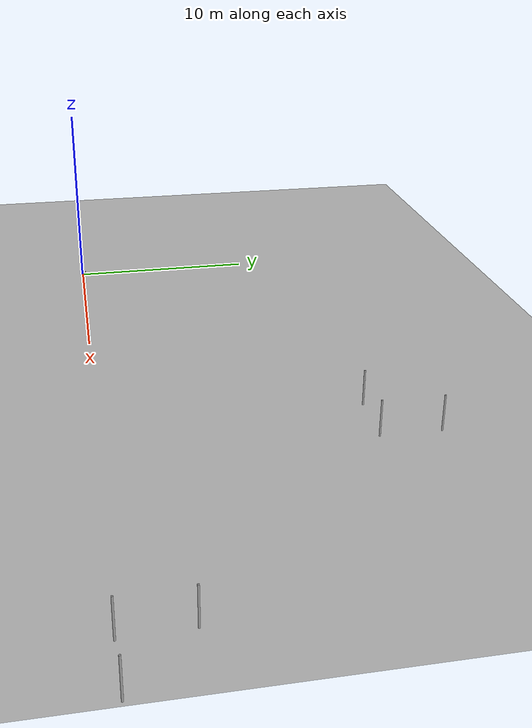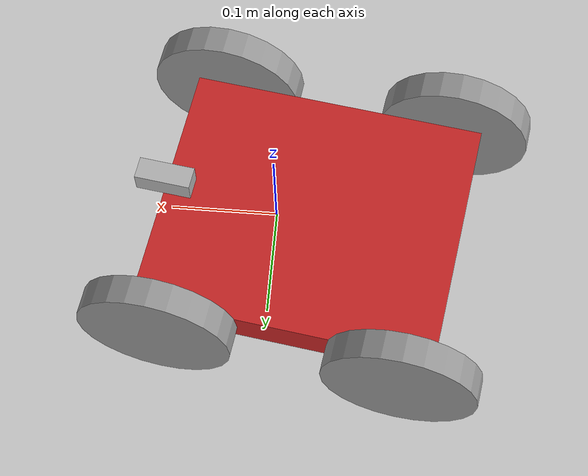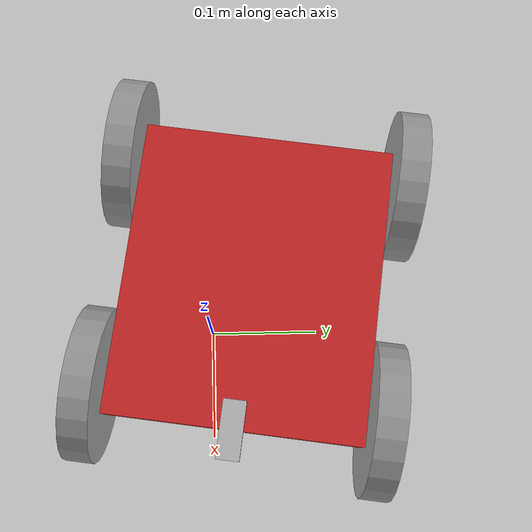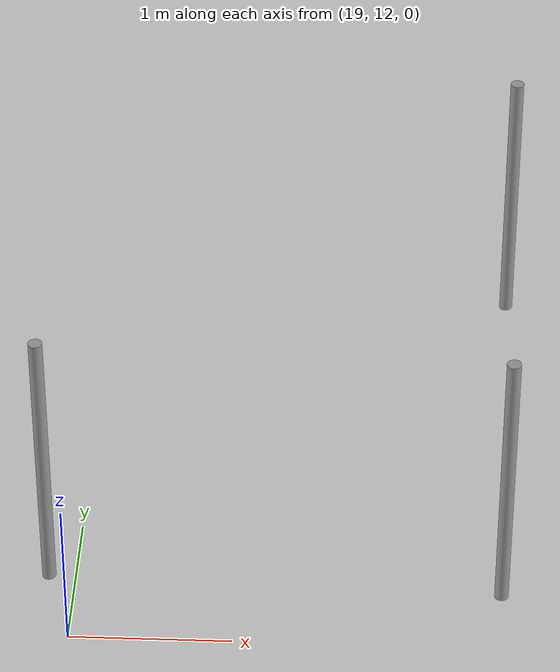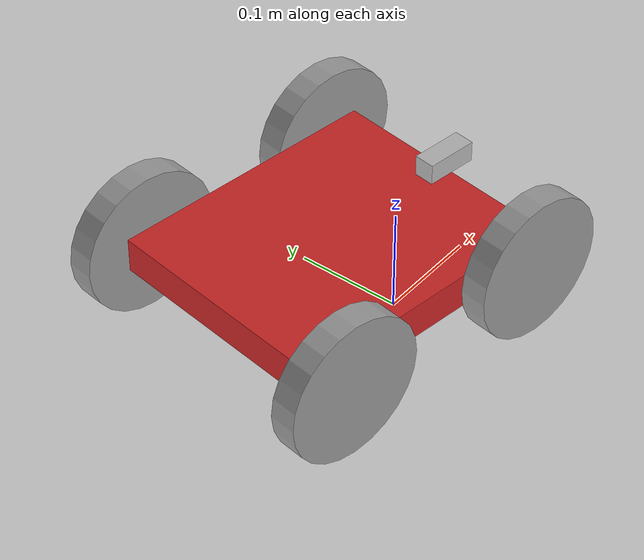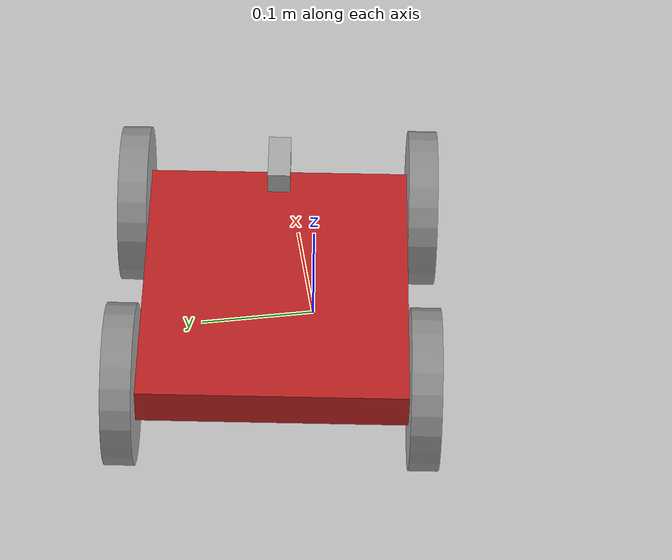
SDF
<sdf version="1.6">
 <world name="default">
  <light name="sun" type="directional">
   <pose>0 0 10 0 -0 0</pose>
   <diffuse>0.8 0.8 0.8 1</diffuse>
   <specular>0.2 0.2 0.2 1</specular>
   <attenuation>
    <range>1000</range>
    <constant>0.9</constant>
    <linear>0.01</linear>
    <quadratic>0.001</quadratic>
   </attenuation>
   <direction>-0.5 0.1 -0.9</direction>
  </light>
  <model name="smile_map">
   <static>1</static>
   <link name="link">
    <collision name="collision">
     <geometry><plane><size>70 50</size><normal>0 0 1</normal></plane></geometry>
     <surface><friction><ode><mu>100</mu><mu2>50</mu2></ode></friction></surface>
    </collision>
    <visual name="visual">
     <geometry><plane><size>70 50</size><normal>0 0 1</normal></plane></geometry>
     <material>
      <script><uri>file://media/materials/scripts/smile.material</uri><name>Smile/Map</name></script>
     </material>
    </visual>
   </link>
  </model>
  <gravity>0 0 -9.8</gravity>
  <magnetic_field>6e-06 2.3e-05 -4.2e-05</magnetic_field>
  <atmosphere type="adiabatic"/>
  <physics name="default_physics" default="0" type="ode">
   <max_step_size>0.001</max_step_size>
   <real_time_factor>1</real_time_factor>
   <real_time_update_rate>1000</real_time_update_rate>
  </physics>
  <scene><ambient>0.4 0.4 0.4 1</ambient><background>0.7 0.7 0.7 1</background><shadows>1</shadows></scene>
  <audio><device>default</device></audio>
  <spherical_coordinates>
   <surface_model>EARTH_WGS84</surface_model>
   <latitude_deg>0</latitude_deg>
   <longitude_deg>0</longitude_deg>
   <elevation>0</elevation>
   <heading_deg>0</heading_deg>
  </spherical_coordinates>
  <model name="/smile">
   <link name="base_link">
    <inertial>
     <mass>1</mass>
     <inertia>
      <ixx>0.00602108</ixx>
      <ixy>0</ixy>
      <ixz>0</ixz>
      <iyy>0.00444851</iyy>
      <iyz>0</iyz>
      <izz>0.0102822</izz>
     </inertia>
    </inertial>
    <collision name="base_link_fixed_joint_lump__chassis_collision">
     <geometry><box><size>0.2667 0.2286 0.033528</size></box></geometry>
    </collision>
    <collision name="base_link_fixed_joint_lump__camera_link_collision_1">
     <pose>0.13335 0 0.026764 0 -0 0</pose>
     <geometry><box><size>0.05 0.02 0.02</size></box></geometry>
    </collision>
    <visual name="base_link_fixed_joint_lump__chassis_visual">
     <geometry><box><size>0.2667 0.2286 0.033528</size></box></geometry>
     <material>
      <script><name>Gazebo/Red</name><uri>file://media/materials/scripts/gazebo.material</uri></script>
     </material>
    </visual>
    <visual name="base_link_fixed_joint_lump__camera_link_visual_1">
     <pose>0.13335 0 0.026764 0 -0 0</pose>
     <geometry><box><size>0.05 0.02 0.02</size></box></geometry>
     <material><script><uri>__default__</uri><name>__default__</name></script></material>
    </visual>
    <sensor name="camera1" type="camera">
     <update_rate>30</update_rate>
     <camera name="head">
      <horizontal_fov>1.39626</horizontal_fov>
      <image><width>800</width><height>800</height><format>R8G8B8</format></image>
      <clip><near>0.02</near><far>300</far></clip>
      <noise><type>gaussian</type><mean>0</mean><stddev>0.007</stddev></noise>
     </camera>
     <plugin name="camera_controller" filename="libgazebo_ros_camera.so">
      <alwaysOn>1</alwaysOn>
      <updateRate>0.0</updateRate>
      <cameraName>smile/camera1</cameraName>
      <imageTopicName>image_raw</imageTopicName>
      <cameraInfoTopicName>camera_info</cameraInfoTopicName>
      <frameName>camera_link</frameName>
      <hackBaseline>0.07</hackBaseline>
      <distortionK1>0.0</distortionK1>
      <distortionK2>0.0</distortionK2>
      <distortionK3>0.0</distortionK3>
      <distortionT1>0.0</distortionT1>
      <distortionT2>0.0</distortionT2>
      <robotNamespace>/</robotNamespace>
     </plugin>
     <pose>0.13335 0 0.026764 0 -0 0</pose>
    </sensor>
    <sensor name="imu_sensor" type="imu">
     <always_on>1</always_on>
     <update_rate>100</update_rate>
     <visualize>1</visualize>
     <topic>__default_topic__</topic>
     <plugin name="imu_plugin" filename="libgazebo_ros_imu_sensor.so">
      <topicName>smile/imu</topicName>
      <bodyName>imu_link</bodyName>
      <updateRateHZ>10.0</updateRateHZ>
      <gaussianNoise>0.0</gaussianNoise>
      <xyzOffset>0 0 0</xyzOffset>
      <rpyOffset>0 0 0</rpyOffset>
      <frameName>imu_link</frameName>
      <initialOrientationAsReference>0</initialOrientationAsReference>
      <robotNamespace>/</robotNamespace>
     </plugin>
    </sensor>
   </link>
   <link name="left_back_wheel">
    <pose>-0.10795 0.1143 0 0 -0 0</pose>
    <inertial>
     <pose>0 0.0127 0 0 1.57075 1.57075</pose>
     <mass>0.5</mass>
     <inertia><ixx>0.01</ixx><ixy>0</ixy><ixz>0</ixz><iyy>0.0011758</iyy><iyz>0</iyz><izz>0.01</izz></inertia>
    </inertial>
    <collision name="left_back_wheel_collision">
     <pose>0 0.0127 0 3.14159 1.57079 -1.57084</pose>
     <geometry><cylinder><length>0.0254</length><radius>0.06858</radius></cylinder></geometry>
     <surface><friction><ode><mu>0.5</mu><mu2>0.5</mu2></ode></friction></surface>
    </collision>
    <visual name="left_back_wheel_visual">
     <pose>0 0.0127 0 3.14159 1.57079 -1.57084</pose>
     <geometry><cylinder><length>0.0254</length><radius>0.06858</radius></cylinder></geometry>
     <material>
      <script><name>Gazebo/Grey</name><uri>file://media/materials/scripts/gazebo.material</uri></script>
     </material>
    </visual>
   </link>
   <joint name="base_to_left_back_wheel" type="revolute">
    <child>left_back_wheel</child>
    <parent>base_link</parent>
    <axis>
     <xyz>0 1 0</xyz>
     <limit><lower>-1e+16</lower><upper>1e+16</upper></limit>
     <dynamics>
      <damping>1.5</damping>
      <friction>0</friction>
      <spring_reference>0</spring_reference>
      <spring_stiffness>0</spring_stiffness>
     </dynamics>
     <use_parent_model_frame>1</use_parent_model_frame>
    </axis>
   </joint>
   <link name="left_front_wheel">
    <pose>0.10795 0.1143 0 0 -0 0</pose>
    <inertial>
     <pose>0 0.0127 0 0 1.57075 1.57075</pose>
     <mass>0.5</mass>
     <inertia><ixx>0.01</ixx><ixy>0</ixy><ixz>0</ixz><iyy>0.0011758</iyy><iyz>0</iyz><izz>0.01</izz></inertia>
    </inertial>
    <collision name="left_front_wheel_collision">
     <pose>0 0.0127 0 3.14159 1.57079 -1.57084</pose>
     <geometry><cylinder><length>0.0254</length><radius>0.06858</radius></cylinder></geometry>
     <surface><friction><ode><mu>0.5</mu><mu2>0.5</mu2></ode></friction></surface>
    </collision>
    <visual name="left_front_wheel_visual">
     <pose>0 0.0127 0 3.14159 1.57079 -1.57084</pose>
     <geometry><cylinder><length>0.0254</length><radius>0.06858</radius></cylinder></geometry>
     <material>
      <script><name>Gazebo/Grey</name><uri>file://media/materials/scripts/gazebo.material</uri></script>
     </material>
    </visual>
   </link>
   <joint name="base_to_left_front_wheel" type="revolute">
    <child>left_front_wheel</child>
    <parent>base_link</parent>
    <axis>
     <xyz>0 1 0</xyz>
     <limit><lower>-1e+16</lower><upper>1e+16</upper></limit>
     <dynamics>
      <damping>1.5</damping>
      <friction>0</friction>
      <spring_reference>0</spring_reference>
      <spring_stiffness>0</spring_stiffness>
     </dynamics>
     <use_parent_model_frame>1</use_parent_model_frame>
    </axis>
   </joint>
   <link name="right_back_wheel">
    <pose>-0.10795 -0.1143 0 0 -0 0</pose>
    <inertial>
     <pose>0 -0.0127 0 0 1.57075 1.57075</pose>
     <mass>0.5</mass>
     <inertia><ixx>0.01</ixx><ixy>0</ixy><ixz>0</ixz><iyy>0.0011758</iyy><iyz>0</iyz><izz>0.01</izz></inertia>
    </inertial>
    <collision name="right_back_wheel_collision">
     <pose>0 -0.0127 0 3.14159 1.57079 -1.57084</pose>
     <geometry><cylinder><length>0.0254</length><radius>0.06858</radius></cylinder></geometry>
     <surface><friction><ode><mu>0.5</mu><mu2>0.5</mu2></ode></friction></surface>
    </collision>
    <visual name="right_back_wheel_visual">
     <pose>0 -0.0127 0 3.14159 1.57079 -1.57084</pose>
     <geometry><cylinder><length>0.0254</length><radius>0.06858</radius></cylinder></geometry>
     <material>
      <script><name>Gazebo/Grey</name><uri>file://media/materials/scripts/gazebo.material</uri></script>
     </material>
    </visual>
   </link>
   <joint name="base_to_right_back_wheel" type="revolute">
    <child>right_back_wheel</child>
    <parent>base_link</parent>
    <axis>
     <xyz>0 1 0</xyz>
     <limit><lower>-1e+16</lower><upper>1e+16</upper></limit>
     <dynamics>
      <damping>1.5</damping>
      <friction>0</friction>
      <spring_reference>0</spring_reference>
      <spring_stiffness>0</spring_stiffness>
     </dynamics>
     <use_parent_model_frame>1</use_parent_model_frame>
    </axis>
   </joint>
   <link name="right_front_wheel">
    <pose>0.10795 -0.1143 0 0 -0 0</pose>
    <inertial>
     <pose>0 -0.0127 0 0 1.57075 1.57075</pose>
     <mass>0.5</mass>
     <inertia><ixx>0.01</ixx><ixy>0</ixy><ixz>0</ixz><iyy>0.0011758</iyy><iyz>0</iyz><izz>0.01</izz></inertia>
    </inertial>
    <collision name="right_front_wheel_collision">
     <pose>0 -0.0127 0 3.14159 1.57079 -1.57084</pose>
     <geometry><cylinder><length>0.0254</length><radius>0.06858</radius></cylinder></geometry>
     <surface><friction><ode><mu>0.5</mu><mu2>0.5</mu2></ode></friction></surface>
    </collision>
    <visual name="right_front_wheel_visual">
     <pose>0 -0.0127 0 3.14159 1.57079 -1.57084</pose>
     <geometry><cylinder><length>0.0254</length><radius>0.06858</radius></cylinder></geometry>
     <material>
      <script><name>Gazebo/Grey</name><uri>file://media/materials/scripts/gazebo.material</uri></script>
     </material>
    </visual>
   </link>
   <joint name="base_to_right_front_wheel" type="revolute">
    <child>right_front_wheel</child>
    <parent>base_link</parent>
    <axis>
     <xyz>0 1 0</xyz>
     <limit><lower>-1e+16</lower><upper>1e+16</upper></limit>
     <dynamics>
      <damping>1.5</damping>
      <friction>0</friction>
      <spring_reference>0</spring_reference>
      <spring_stiffness>0</spring_stiffness>
     </dynamics>
     <use_parent_model_frame>1</use_parent_model_frame>
    </axis>
   </joint>
   <static>0</static>
   <plugin name="gazebo_ros_control" filename="libgazebo_ros_control.so">
    <robotNamespace>/smile</robotNamespace>
   </plugin>
   <pose>-0.036177 0.038394 0.06858 0 0 -0.149096</pose>
  </model>
  <model name="unit_cylinder">
   <pose>21.6386 12.4702 0.919305 -1e-06 -1e-06 -0.001819</pose>
   <link name="link">
    <inertial>
     <mass>1</mass>
     <inertia><ixx>0.145833</ixx><ixy>0</ixy><ixz>0</ixz><iyy>0.145833</iyy><iyz>0</iyz><izz>0.125</izz></inertia>
    </inertial>
    <collision name="collision">
     <geometry><cylinder><radius>0.0431855</radius><length>1.83861</length></cylinder></geometry>
    </collision>
    <visual name="visual">
     <geometry><cylinder><radius>0.0431855</radius><length>1.83861</length></cylinder></geometry>
     <material>
      <script><name>Gazebo/Grey</name><uri>file://media/materials/scripts/gazebo.material</uri></script>
     </material>
    </visual>
   </link>
  </model>
  <model name="unit_cylinder_clone">
   <pose>21.7004 15.3909 0.919305 -1e-06 2e-06 -0.002004</pose>
   <link name="link">
    <inertial>
     <mass>1</mass>
     <inertia><ixx>0.145833</ixx><ixy>0</ixy><ixz>0</ixz><iyy>0.145833</iyy><iyz>0</iyz><izz>0.125</izz></inertia>
    </inertial>
    <collision name="collision">
     <geometry><cylinder><radius>0.0431855</radius><length>1.83861</length></cylinder></geometry>
    </collision>
    <visual name="visual">
     <geometry><cylinder><radius>0.0431855</radius><length>1.83861</length></cylinder></geometry>
     <material>
      <script><name>Gazebo/Grey</name><uri>file://media/materials/scripts/gazebo.material</uri></script>
     </material>
    </visual>
   </link>
  </model>
  <model name="unit_cylinder_clone_0">
   <pose>18.8315 12.5489 0.919305 -1e-06 1e-06 -0.002002</pose>
   <link name="link">
    <inertial>
     <mass>1</mass>
     <inertia><ixx>0.145833</ixx><ixy>0</ixy><ixz>0</ixz><iyy>0.145833</iyy><iyz>0</iyz><izz>0.125</izz></inertia>
    </inertial>
    <collision name="collision">
     <geometry><cylinder><radius>0.0431855</radius><length>1.83861</length></cylinder></geometry>
    </collision>
    <visual name="visual">
     <geometry><cylinder><radius>0.0431855</radius><length>1.83861</length></cylinder></geometry>
     <material>
      <script><name>Gazebo/Grey</name><uri>file://media/materials/scripts/gazebo.material</uri></script>
     </material>
    </visual>
   </link>
  </model>
  <model name="unit_cylinder_clone_1">
   <pose>32.151 2.77257 0.919519 0.005242 -0.000224 -0.000658</pose>
   <link name="link">
    <inertial>
     <mass>1</mass>
     <inertia><ixx>0.145833</ixx><ixy>0</ixy><ixz>0</ixz><iyy>0.145833</iyy><iyz>0</iyz><izz>0.125</izz></inertia>
    </inertial>
    <collision name="collision">
     <geometry><cylinder><radius>0.0431855</radius><length>1.83861</length></cylinder></geometry>
    </collision>
    <visual name="visual">
     <geometry><cylinder><radius>0.0431855</radius><length>1.83861</length></cylinder></geometry>
     <material>
      <script><name>Gazebo/Grey</name><uri>file://media/materials/scripts/gazebo.material</uri></script>
     </material>
    </visual>
   </link>
  </model>
  <model name="unit_cylinder_clone_2">
   <pose>34.8396 0.020861 0.919305 -1e-06 1e-06 -0.001119</pose>
   <link name="link">
    <inertial>
     <mass>1</mass>
     <inertia><ixx>0.145833</ixx><ixy>0</ixy><ixz>0</ixz><iyy>0.145833</iyy><iyz>0</iyz><izz>0.125</izz></inertia>
    </inertial>
    <collision name="collision">
     <geometry><cylinder><radius>0.0431855</radius><length>1.83861</length></cylinder></geometry>
    </collision>
    <visual name="visual">
     <geometry><cylinder><radius>0.0431855</radius><length>1.83861</length></cylinder></geometry>
     <material>
      <script><name>Gazebo/Grey</name><uri>file://media/materials/scripts/gazebo.material</uri></script>
     </material>
    </visual>
   </link>
  </model>
  <model name="unit_cylinder_clone_3">
   <pose>32.2379 -0.051007 0.919304 -1e-06 -1e-06 -0.002135</pose>
   <link name="link">
    <inertial>
     <mass>1</mass>
     <inertia><ixx>0.145833</ixx><ixy>0</ixy><ixz>0</ixz><iyy>0.145833</iyy><iyz>0</iyz><izz>0.125</izz></inertia>
    </inertial>
    <collision name="collision">
     <geometry><cylinder><radius>0.0431855</radius><length>1.83861</length></cylinder></geometry>
    </collision>
    <visual name="visual">
     <geometry><cylinder><radius>0.0431855</radius><length>1.83861</length></cylinder></geometry>
     <material>
      <script><name>Gazebo/Grey</name><uri>file://media/materials/scripts/gazebo.material</uri></script>
     </material>
    </visual>
   </link>
  </model>
 </world>
</sdf>
